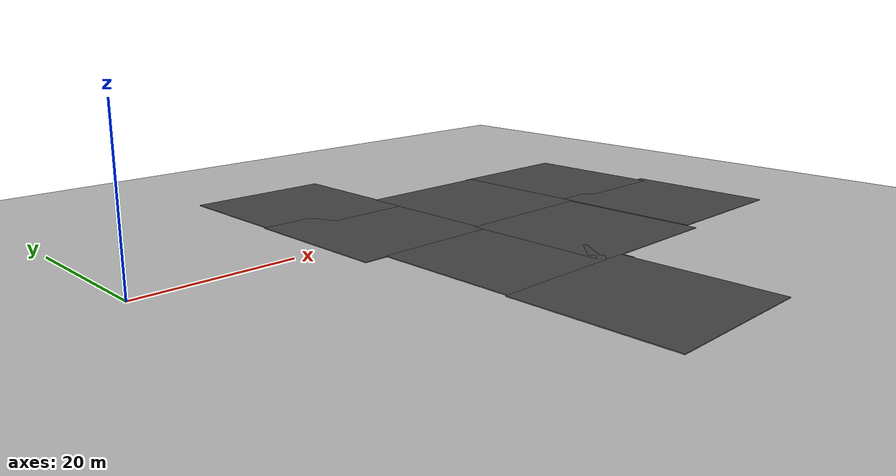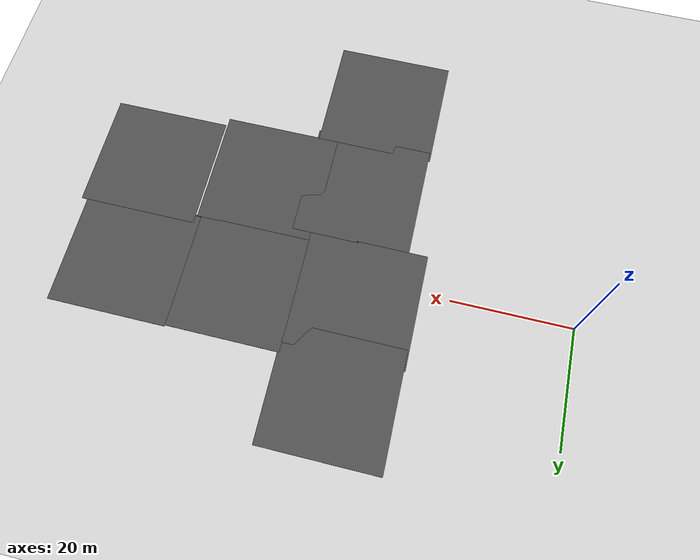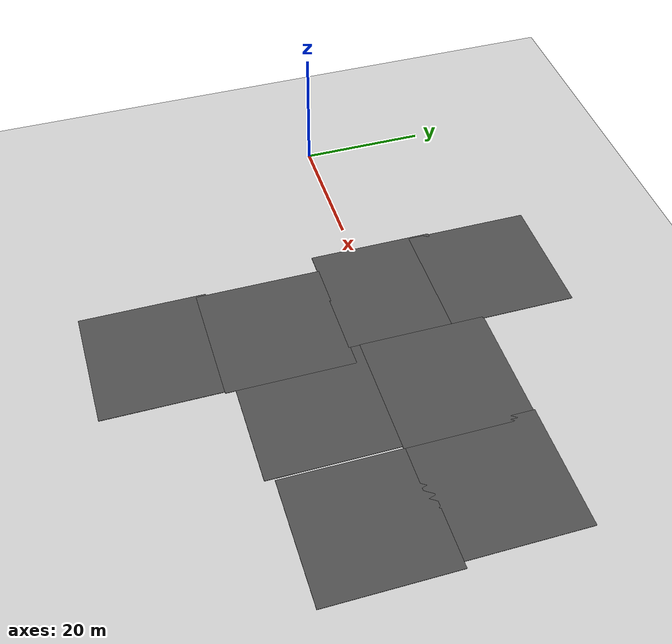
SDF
<sdf version="1.6">
 <world name="default">
  <model name="ground_plane">
   <static>1</static>
   <link name="link">
    <collision name="collision">
     <geometry><plane><normal>0 0 1</normal><size>100 100</size></plane></geometry>
     <surface><friction><ode><mu>100</mu><mu2>50</mu2></ode></friction></surface>
    </collision>
    <visual name="visual">
     <cast_shadows>0</cast_shadows>
     <geometry><plane><normal>0 0 1</normal><size>100 100</size></plane></geometry>
     <material>
      <script><uri>file://media/materials/scripts/gazebo.material</uri><name>Gazebo/Grey</name></script>
     </material>
    </visual>
   </link>
  </model>
  <model name="asphalt_plane">
   <static>1</static>
   <link name="link">
    <collision name="collision"><geometry><box><size>20 20 0.1</size></box></geometry></collision>
    <visual name="visual">
     <cast_shadows>0</cast_shadows>
     <geometry><box><size>20 20 0.1</size></box></geometry>
     <material>
      <script>
       <uri>model://asphalt_plane/materials/scripts</uri>
       <uri>model://asphalt_plane/materials/textures</uri>
       <name>vrc/asphalt</name>
      </script>
     </material>
    </visual>
   </link>
   <pose>54.4007 -14.9404 0 0 -0 0</pose>
  </model>
  <model name="asphalt_plane_clone">
   <static>1</static>
   <link name="link">
    <collision name="collision"><geometry><box><size>20 20 0.1</size></box></geometry></collision>
    <visual name="visual">
     <cast_shadows>0</cast_shadows>
     <geometry><box><size>20 20 0.1</size></box></geometry>
     <material>
      <script>
       <uri>model://asphalt_plane/materials/scripts</uri>
       <uri>model://asphalt_plane/materials/textures</uri>
       <name>vrc/asphalt</name>
      </script>
     </material>
    </visual>
   </link>
   <pose>54.7866 4.95222 0 0 -0 0</pose>
  </model>
  <model name="asphalt_plane_clone_1">
   <static>1</static>
   <link name="link">
    <collision name="collision"><geometry><box><size>20 20 0.1</size></box></geometry></collision>
    <visual name="visual">
     <cast_shadows>0</cast_shadows>
     <geometry><box><size>20 20 0.1</size></box></geometry>
     <material>
      <script>
       <uri>model://asphalt_plane/materials/scripts</uri>
       <uri>model://asphalt_plane/materials/textures</uri>
       <name>vrc/asphalt</name>
      </script>
     </material>
    </visual>
   </link>
   <pose>74.721 -13.5096 0 0 -0 0</pose>
  </model>
  <model name="asphalt_plane_clone_2">
   <static>1</static>
   <link name="link">
    <collision name="collision"><geometry><box><size>20 20 0.1</size></box></geometry></collision>
    <visual name="visual">
     <cast_shadows>0</cast_shadows>
     <geometry><box><size>20 20 0.1</size></box></geometry>
     <material>
      <script>
       <uri>model://asphalt_plane/materials/scripts</uri>
       <uri>model://asphalt_plane/materials/textures</uri>
       <name>vrc/asphalt</name>
      </script>
     </material>
    </visual>
   </link>
   <pose>73.6902 5.16852 0 0 -0 0</pose>
  </model>
  <model name="asphalt_plane_clone_3">
   <static>1</static>
   <link name="link">
    <collision name="collision"><geometry><box><size>20 20 0.1</size></box></geometry></collision>
    <visual name="visual">
     <cast_shadows>0</cast_shadows>
     <geometry><box><size>20 20 0.1</size></box></geometry>
     <material>
      <script>
       <uri>model://asphalt_plane/materials/scripts</uri>
       <uri>model://asphalt_plane/materials/textures</uri>
       <name>vrc/asphalt</name>
      </script>
     </material>
    </visual>
   </link>
   <pose>38.0632 -16.5165 0 0 -0 0</pose>
  </model>
  <model name="asphalt_plane_clone_4">
   <static>1</static>
   <link name="link">
    <collision name="collision"><geometry><box><size>20 20 0.1</size></box></geometry></collision>
    <visual name="visual">
     <cast_shadows>0</cast_shadows>
     <geometry><box><size>20 20 0.1</size></box></geometry>
     <material>
      <script>
       <uri>model://asphalt_plane/materials/scripts</uri>
       <uri>model://asphalt_plane/materials/textures</uri>
       <name>vrc/asphalt</name>
      </script>
     </material>
    </visual>
   </link>
   <pose>34.8661 3.2476 0 0 -0 0</pose>
  </model>
  <model name="asphalt_plane_clone_5">
   <static>1</static>
   <link name="link">
    <collision name="collision"><geometry><box><size>20 20 0.1</size></box></geometry></collision>
    <visual name="visual">
     <cast_shadows>0</cast_shadows>
     <geometry><box><size>20 20 0.1</size></box></geometry>
     <material>
      <script>
       <uri>model://asphalt_plane/materials/scripts</uri>
       <uri>model://asphalt_plane/materials/textures</uri>
       <name>vrc/asphalt</name>
      </script>
     </material>
    </visual>
   </link>
   <pose>35.0859 19.7536 0 0 -0 0</pose>
  </model>
  <model name="asphalt_plane_clone_3_clone">
   <static>1</static>
   <link name="link">
    <collision name="collision"><geometry><box><size>20 20 0.1</size></box></geometry></collision>
    <visual name="visual">
     <cast_shadows>0</cast_shadows>
     <geometry><box><size>20 20 0.1</size></box></geometry>
     <material>
      <script>
       <uri>model://asphalt_plane/materials/scripts</uri>
       <uri>model://asphalt_plane/materials/textures</uri>
       <name>vrc/asphalt</name>
      </script>
     </material>
    </visual>
   </link>
   <pose>37.7995 -34.875 0 0 -0 0</pose>
  </model>
 </world>
</sdf>
